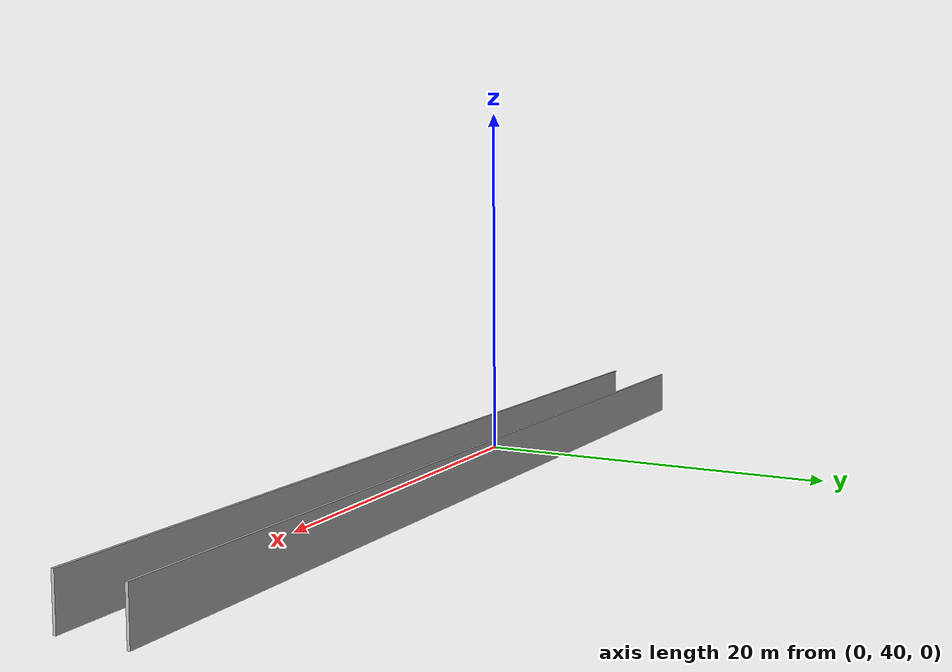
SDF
<?xml version="1.0" ?>
<sdf version="1.6">
  <model name="sps_2702">
    <pose frame="">0 0 0 0 -0 0</pose>
    <static>1</static>
    <self_collide>0</self_collide>
    <allow_auto_disable>0</allow_auto_disable>
    <link name="Wall461">
      <kinematic>0</kinematic>
      <gravity>1</gravity>
      <self_collide>0</self_collide>
      <collision name="collision">
        <geometry>
          <box>
            <size>50.0165 0.15 2.5</size>
          </box>
        </geometry>
        <pose frame="">0 0 0 0 -0 0</pose>
      </collision>
      <visual name="visual">
        <geometry>
          <box>
            <size>50.0165 0.15 2.5</size>
          </box>
        </geometry>
        <pose frame="">0 0 0 0 -0 0</pose>
        <cast_shadows>1</cast_shadows>
        <transparency>0.0</transparency>
      </visual>
      <pose frame="">9.46944 40.8028 1.25 0 -0 3.11591</pose>
    </link>
    <link name="Wall464">
      <kinematic>0</kinematic>
      <gravity>1</gravity>
      <self_collide>0</self_collide>
      <collision name="collision">
        <geometry>
          <box>
            <size>50.0165 0.15 2.5</size>
          </box>
        </geometry>
        <pose frame="">0 0 0 0 -0 0</pose>
      </collision>
      <visual name="visual">
        <geometry>
          <box>
            <size>50.0165 0.15 2.5</size>
          </box>
        </geometry>
        <pose frame="">0 0 0 0 -0 0</pose>
        <cast_shadows>1</cast_shadows>
        <transparency>0.0</transparency>
      </visual>
      <pose frame="">9.46944 44.3038 1.25 0 0 -0.0256802</pose>
    </link>
  </model>
</sdf>
